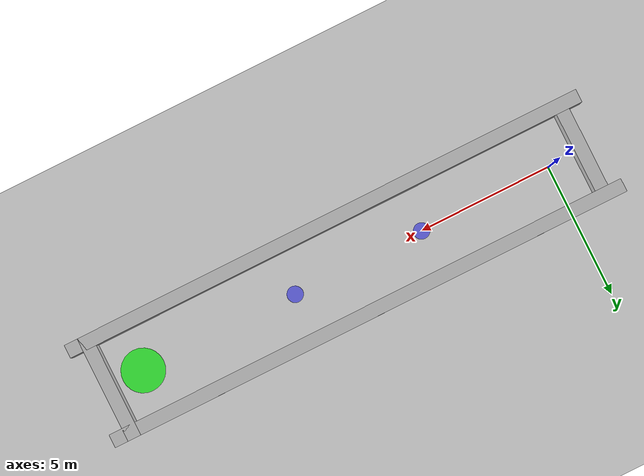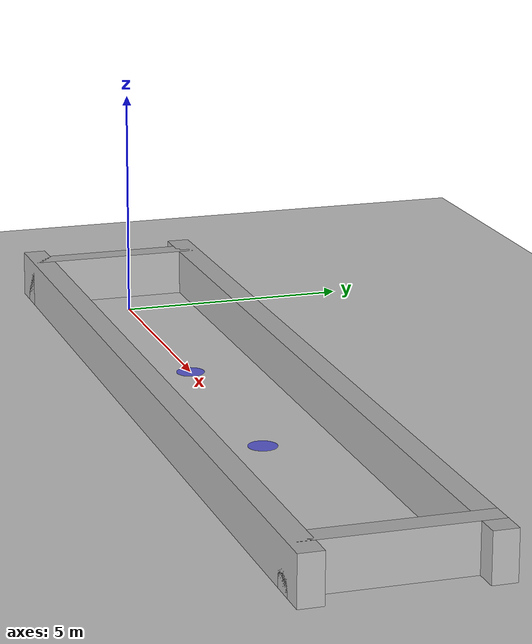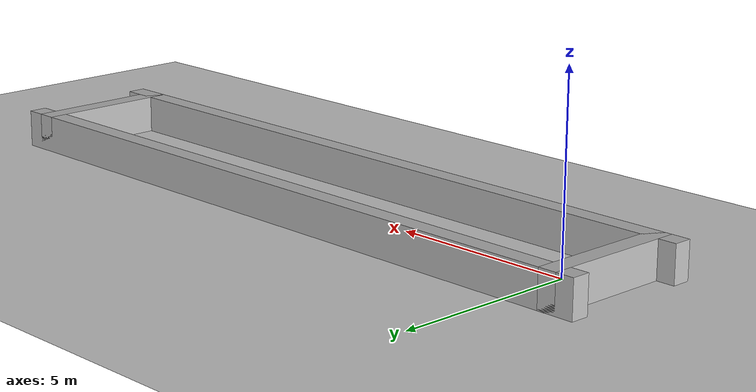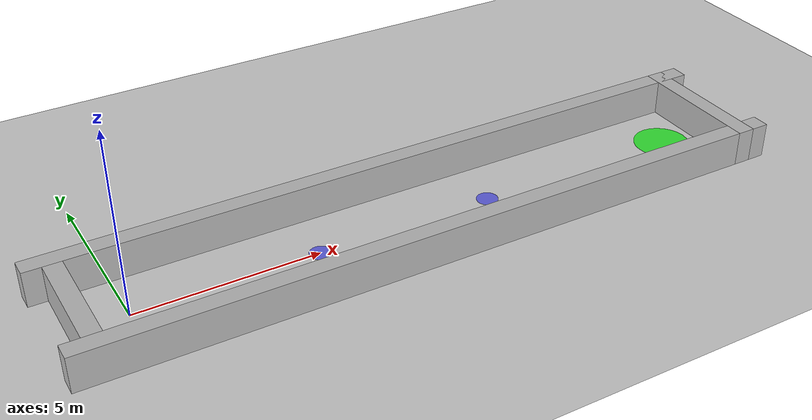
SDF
<?xml version="1.0" ?>
<sdf version="1.6">
  <world name="default">
    <physics type="ode">
      <real_time_factor>3</real_time_factor>
      <real_time_update_rate>3000</real_time_update_rate>
      <max_step_size>0.001</max_step_size>
    </physics>
    <include><uri>model://sun</uri></include>
    <include><uri>model://ground_plane</uri></include>

    <!-- ===== STRAIGHT CORRIDOR (20m x 3m) =====
         Inner bounds: x[-1, 17], y[-1.5, 1.5]
         Robot spawns near x=0.  Goal at x=16.
         Waypoints: [5,0], [10,0], [16,0]
    ===== -->

    <!-- South outer wall: center (8, -1.75), length 20m -->
    <model name="wall_south"><static>true</static><pose>8.0 -1.75 0.5 0 0 0</pose>
      <link name="link">
        <collision name="col"><geometry><box><size>20.0 0.5 1.0</size></box></geometry></collision>
        <visual name="vis"><geometry><box><size>20.0 0.5 1.0</size></box></geometry>
          <material><script><uri>file://media/materials/scripts/gazebo.material</uri><name>Gazebo/Brick</name></script></material>
        </visual>
      </link>
    </model>

    <!-- North outer wall: center (8, 1.75) -->
    <model name="wall_north"><static>true</static><pose>8.0 1.75 0.5 0 0 0</pose>
      <link name="link">
        <collision name="col"><geometry><box><size>20.0 0.5 1.0</size></box></geometry></collision>
        <visual name="vis"><geometry><box><size>20.0 0.5 1.0</size></box></geometry>
          <material><script><uri>file://media/materials/scripts/gazebo.material</uri><name>Gazebo/Brick</name></script></material>
        </visual>
      </link>
    </model>

    <!-- West wall: center (-1.25, 0) -->
    <model name="wall_west"><static>true</static><pose>-1.25 0.0 0.5 0 0 0</pose>
      <link name="link">
        <collision name="col"><geometry><box><size>0.5 4.0 1.0</size></box></geometry></collision>
        <visual name="vis"><geometry><box><size>0.5 4.0 1.0</size></box></geometry>
          <material><script><uri>file://media/materials/scripts/gazebo.material</uri><name>Gazebo/Brick</name></script></material>
        </visual>
      </link>
    </model>

    <!-- East wall: center (17.25, 0) -->
    <model name="wall_east"><static>true</static><pose>17.25 0.0 0.5 0 0 0</pose>
      <link name="link">
        <collision name="col"><geometry><box><size>0.5 4.0 1.0</size></box></geometry></collision>
        <visual name="vis"><geometry><box><size>0.5 4.0 1.0</size></box></geometry>
          <material><script><uri>file://media/materials/scripts/gazebo.material</uri><name>Gazebo/Brick</name></script></material>
        </visual>
      </link>
    </model>

    <!-- Goal marker: green disk at x=16, y=0 -->
    <model name="goal_marker"><static>true</static><pose>16.0 0.0 0.005 0 0 0</pose>
      <link name="link">
        <visual name="vis">
          <geometry><cylinder><radius>0.8</radius><length>0.01</length></cylinder></geometry>
          <material><ambient>0 1 0 0.7</ambient><diffuse>0 1 0 0.7</diffuse><emissive>0 0.5 0 1</emissive></material>
        </visual>
      </link>
    </model>

    <!-- WP markers (blue) -->
    <model name="wp1_marker"><static>true</static><pose>5.0 0.0 0.005 0 0 0</pose>
      <link name="link"><visual name="vis"><geometry><cylinder><radius>0.3</radius><length>0.01</length></cylinder></geometry>
        <material><ambient>0 0 1 0.5</ambient><diffuse>0 0 1 0.5</diffuse></material></visual></link>
    </model>
    <model name="wp2_marker"><static>true</static><pose>10.0 0.0 0.005 0 0 0</pose>
      <link name="link"><visual name="vis"><geometry><cylinder><radius>0.3</radius><length>0.01</length></cylinder></geometry>
        <material><ambient>0 0 1 0.5</ambient><diffuse>0 0 1 0.5</diffuse></material></visual></link>
    </model>

  </world>
</sdf>
